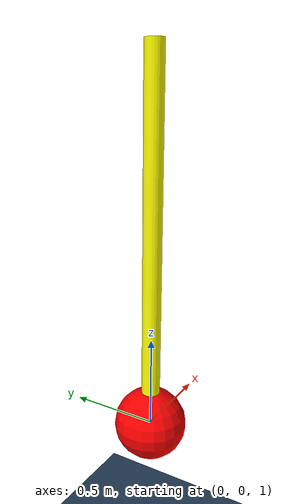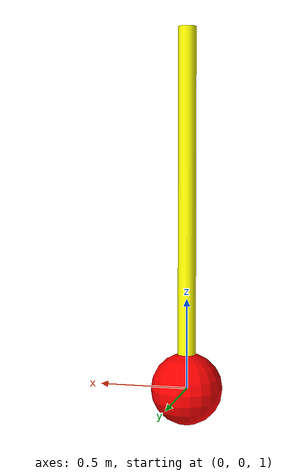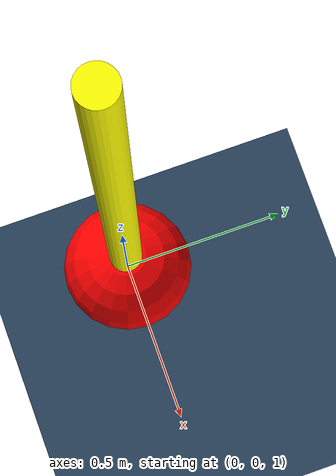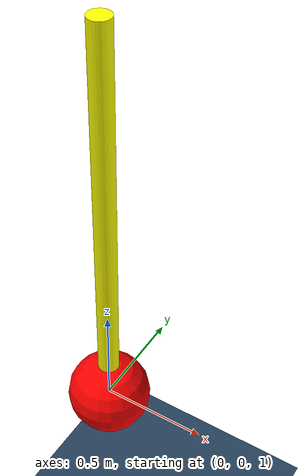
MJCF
<mujoco model="Pendulum">
	<statistic center="0 0 0.1" extent="0.6" meansize="0.5"/>
	<option timestep ="0.001" density="1.205" viscosity="1.8e-5"/> <!--density[kg/m3] viscosity[m2/s]-->

	<visual>
		<headlight diffuse="0.6 0.6 0.6" ambient="0.3 0.3 0.3" specular="0 0 0"/>
		<rgba haze="0.15 0.25 0.35 1"/>
		<global azimuth="110" elevation="-40" ellipsoidinertia="true"/>
  	</visual>

	<asset>
		<!--scena-->
		<texture type="skybox" builtin="gradient" rgb1="0.3 0.5 0.7" rgb2="0 0 0" width="512" height="512"/><!--nebo-->

		<texture type="2d" name="podlaha_textura" builtin="checker" mark="edge" rgb1="0.2 0.3 0.4" rgb2="0.1 0.2 0.3" markrgb="0.8 0.8 0.8" width="255" height="255"/>
		<material name="podlaha" texture="podlaha_textura" texuniform="true" texrepeat="3 3" reflectance="0"/><!--podlaha-->

	</asset>

	<worldbody>
        <!--svetlo a podlaha-->
        <light diffuse="0.6 0.6 0.6" pos="0 0 3" dir="0 0 -1" directional="true"/>
		<geom name="podlaha" type="plane" size="0 0 0.1" material="podlaha"/>

		<!--kyvadlo-->
		<body name="kyvadlo" pos="0 0 2" euler="0 0 0">
			<geom type="cylinder" size="0.05 1" mass="0" rgba="1 1 0 1"/>
			<geom type="sphere" pos="0 0 -1" mass="2" size="0.2" rgba="1 0 0 1" name="kulicka"/>

			<joint name="joint0" type="hinge" axis="1 0 0" pos="0 0 1"/> <!--prvke pro rotaci-->

			<site name="misto_imisteni_senzoru" pos="0 0 -1" size="0.05"/>
			<site name="misto_imisteni_dalkomeru" pos="0 0 -1" euler="0 180 0" size="0.05"/>
		</body>
	</worldbody>

	<sensor>
		<!--lze cist v kodu z mjData.sensordata-->
		<touch name="kontaktny_senzor" site="misto_imisteni_senzoru"/> <!--1 output-->
		<accelerometer name="akcelerometr" site="misto_imisteni_senzoru"/> <!--3 outputs-->
		<velocimeter name="mereni_rychlosti" site="misto_imisteni_senzoru"/> <!--3 outputs-->
		<gyro name="gyroskop" site="misto_imisteni_senzoru"/> <!--3 outputs-->
		<force name="senzor_sily" site="misto_imisteni_senzoru"/> <!--3 outputs-->
		<torque name="senzor_momentu" site="misto_imisteni_senzoru"/> <!--3 outputs-->

		<rangefinder  name="senzor_vzdalenosti" site="misto_imisteni_dalkomeru" cutoff="10"/> <!--1 output-->
		<!--rangefinder meri podel Z+ site, takze musel jsem smerovat site osou Z+ dolu, aby meril vzalenost do plane-->
	</sensor>

	<actuator>
		<motor name="torque_servo" joint="joint0" gear="1"/>
	</actuator>

</mujoco>
